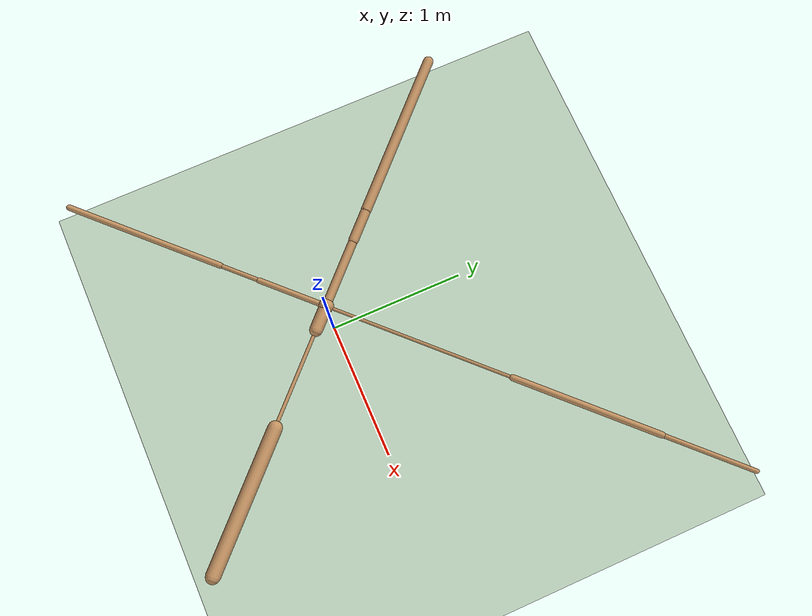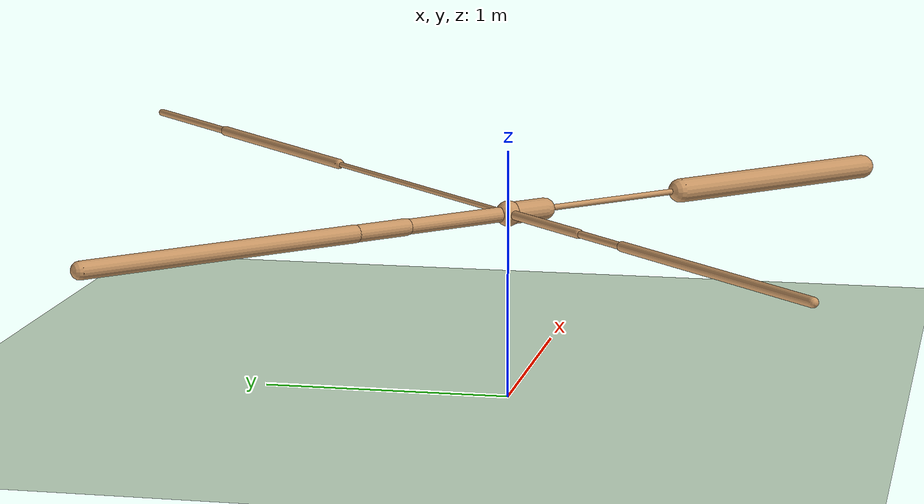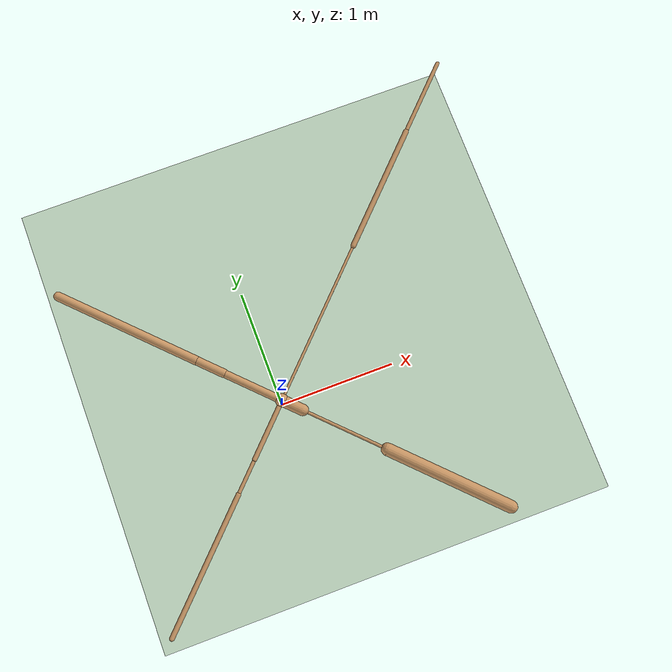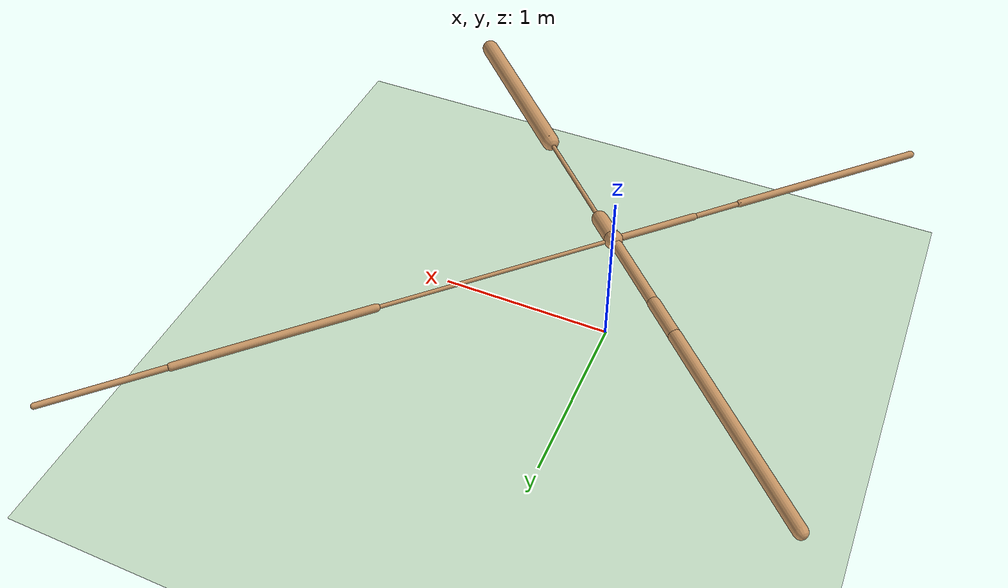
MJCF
<mujoco model="ant">
  <compiler angle="degree" coordinate="local" inertiafromgeom="true" />
  <option integrator="RK4" timestep="0.01" />
  <custom>
    <numeric data="0.0 0.0 0.55 1.0 0.0 0.0 0.0 0.0 1.0 0.0 -1.0 0.0 -1.0 0.0 1.0" name="init_qpos" />
  </custom>
  <default>
    <joint armature="1" damping="1" limited="true" />
    <geom conaffinity="0" condim="3" density="5.0" friction="1 0.5 0.5" margin="0.01" rgba="0.8 0.6 0.4 1" />
  </default>
  <asset>
    <texture builtin="gradient" height="100" rgb1="1 1 1" rgb2="0 0 0" type="skybox" width="100" />
    <texture builtin="flat" height="1278" mark="cross" markrgb="1 1 1" name="texgeom" random="0.01" rgb1="0.8 0.6 0.4" rgb2="0.8 0.6 0.4" type="cube" width="127" />
    <texture builtin="checker" height="100" name="texplane" rgb1="0 0 0" rgb2="0.8 0.8 0.8" type="2d" width="100" />
    <material name="MatPlane" reflectance="0.5" shininess="1" specular="1" texrepeat="60 60" texture="texplane" />
    <material name="geom" texture="texgeom" texuniform="true" />
  </asset>
  <worldbody>
    <light cutoff="100" diffuse="1 1 1" dir="-0 0 -1.3" directional="true" exponent="1" pos="0 0 1.3" specular=".1 .1 .1" />
    <geom conaffinity="1" condim="3" material="MatPlane" name="floor" pos="0 0 0" rgba="0.8 0.9 0.8 1" size="40 40 40" type="plane" />
    <body name="torso" pos="0 0 0.75">
      <camera name="track" mode="trackcom" pos="0 -11 5" xyaxes="1 0 0 0 0.5 1" />
      <geom name="torso_geom" pos="0 0 0" size="0.05113501101732254" type="sphere" />
      <joint armature="0" damping="0" limited="false" margin="0.01" name="root" pos="0 0 0" type="free" />
      <body name="front_left_leg" pos="0 0 0">
        <geom fromto="0 0 0 0.9172049164772034 0.9172049164772034 0" name="aux_1_geom" size="0.010551542043685913" type="capsule" />
        <body name="aux_1" pos="0.9172049164772034 0.9172049164772034 0">
          <joint axis="0 0 1" name="hip_1" pos="0.0 0.0 0.0" range="-30 30" type="hinge" />
          <geom fromto="0 0 0 0.7150389552116394 0.7150389552116394 0" name="left_leg_geom" size="0.02136215753853321" type="capsule" />
          <body name="left_leg_geom_aux" pos="0.7150389552116394 0.7150389552116394 0">
            <joint axis="-1 1 0" name="ankle_1" pos="0.0 0.0 0.0" range="30 70" type="hinge" />
            <geom fromto="0 0 0 0.4429110288619995 0.4429110288619995 0" name="left_ankle_geom" size="0.01563156396150589" type="capsule" />
          </body>
        </body>
      </body>
      <body name="front_right_leg" pos="0 0 0">
        <geom fromto="0 0 0 -0.33915218710899353 0.33915218710899353 0" name="aux_2_geom" size="0.03016856499016285" type="capsule" />
        <body name="aux_2" pos="-0.33915218710899353 0.33915218710899353 0">
          <joint axis="0 0 1" name="hip_2" pos="0.0 0.0 0.0" range="-30 30" type="hinge" />
          <geom fromto="0 0 0 -0.1595323234796524 0.1595323234796524 0" name="right_leg_geom" size="0.03386540710926056" type="capsule" />
          <body name="right_leg_geom_aux" pos="-0.1595323234796524 0.1595323234796524 0">
            <joint axis="1 1 0" name="ankle_2" pos="0.0 0.0 0.0" range="-70 -30" type="hinge" />
            <geom fromto="0 0 0 -0.820076584815979 0.820076584815979 0" name="right_ankle_geom" size="0.0351678840816021" type="capsule" />
          </body>
        </body>
      </body>
      <body name="back_leg" pos="0 0 0">
        <geom fromto="0 0 0 -0.3374243378639221 -0.3374243378639221 0" name="aux_3_geom" size="0.018557477742433548" type="capsule" />
        <body name="aux_3" pos="-0.3374243378639221 -0.3374243378639221 0">
          <joint axis="0 0 1" name="hip_3" pos="0.0 0.0 0.0" range="-30 30" type="hinge" />
          <geom fromto="0 0 0 -0.1964496523141861 -0.1964496523141861 0" name="back_leg_geom" size="0.014313499443233013" type="capsule" />
          <body name="back_leg_geom_aux" pos="-0.1964496523141861 -0.1964496523141861 0">
            <joint axis="-1 1 0" name="ankle_3" pos="0.0 0.0 0.0" range="-70 -30" type="hinge" />
            <geom fromto="0 0 0 -0.7793572545051575 -0.7793572545051575 0" name="third_ankle_geom" size="0.019731739535927773" type="capsule" />
          </body>
        </body>
      </body>
      <body name="right_back_leg" pos="0 0 0">
        <geom fromto="0 0 0 0.1209559515118599 -0.1209559515118599 0" name="aux_4_geom" size="0.04410373046994209" type="capsule" />
        <body name="aux_4" pos="0.1209559515118599 -0.1209559515118599 0">
          <joint axis="0 0 1" name="hip_4" pos="0.0 0.0 0.0" range="-30 30" type="hinge" />
          <geom fromto="0 0 0 0.48316672444343567 -0.48316672444343567 0" name="rightback_leg_geom" size="0.011914638802409172" type="capsule" />
          <body name="rightback_leg_geom_aux" pos="0.48316672444343567 -0.48316672444343567 0">
            <joint axis="1 1 0" name="ankle_4" pos="0.0 0.0 0.0" range="30 70" type="hinge" />
            <geom fromto="0 0 0 0.6921370625495911 -0.6921370625495911 0" name="fourth_ankle_geom" size="0.049052007496356964" type="capsule" />
          </body>
        </body>
      </body>
    </body>
  </worldbody>
  <actuator>
    <motor ctrllimited="true" ctrlrange="-1.0 1.0" joint="hip_4" gear="150" />
    <motor ctrllimited="true" ctrlrange="-1.0 1.0" joint="ankle_4" gear="150" />
    <motor ctrllimited="true" ctrlrange="-1.0 1.0" joint="hip_1" gear="150" />
    <motor ctrllimited="true" ctrlrange="-1.0 1.0" joint="ankle_1" gear="150" />
    <motor ctrllimited="true" ctrlrange="-1.0 1.0" joint="hip_2" gear="150" />
    <motor ctrllimited="true" ctrlrange="-1.0 1.0" joint="ankle_2" gear="150" />
    <motor ctrllimited="true" ctrlrange="-1.0 1.0" joint="hip_3" gear="150" />
    <motor ctrllimited="true" ctrlrange="-1.0 1.0" joint="ankle_3" gear="150" />
  </actuator>
</mujoco>
